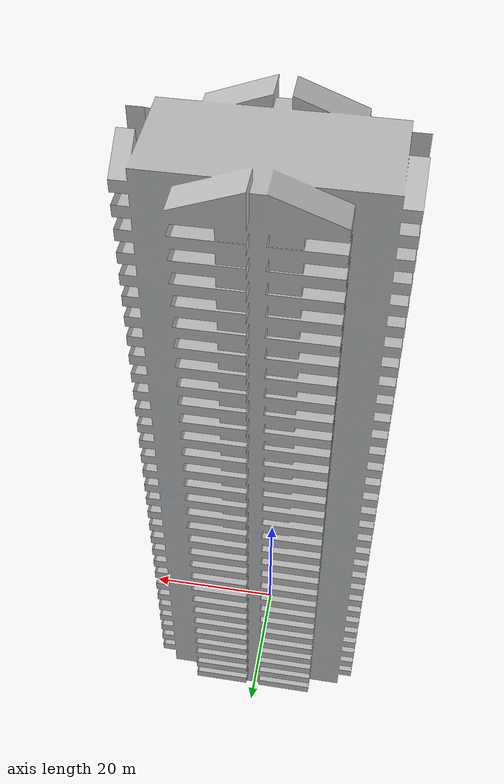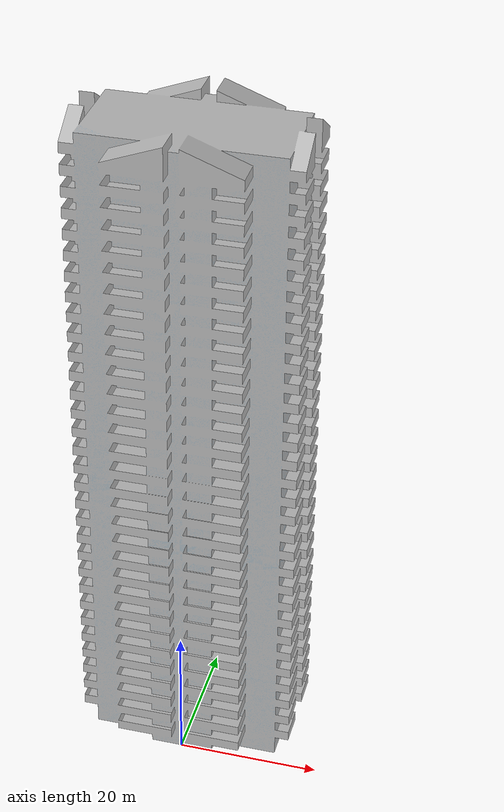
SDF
<?xml version='1.0'?>
<sdf version='1.6'>
  <model name='res2'>
    <link name='link_5'>
      <pose frame=''>-0 4e-06 0 0 -0 0</pose>
      <visual name='visual'>
        <pose frame=''>0 0 0 0 -0 0</pose>
        <geometry>
          <mesh>
            <uri>/usr/share/gazebo-9/models/res2/model.dae</uri>
            <scale>1 1 1</scale>
          </mesh>
        </geometry>
        <transparency>0</transparency>
        <cast_shadows>1</cast_shadows>
      </visual>
      <collision name='collision'>
        <laser_retro>0</laser_retro>
        <max_contacts>10</max_contacts>
        <pose frame=''>0 0 0 0 -0 0</pose>
        <geometry>
          <mesh>
            <uri>/usr/share/gazebo-9/models/res2/model.dae</uri>
            <scale>1 1 1</scale>
          </mesh>
        </geometry>
      </collision>
    </link>
    <static>1</static>
  </model>
</sdf>
